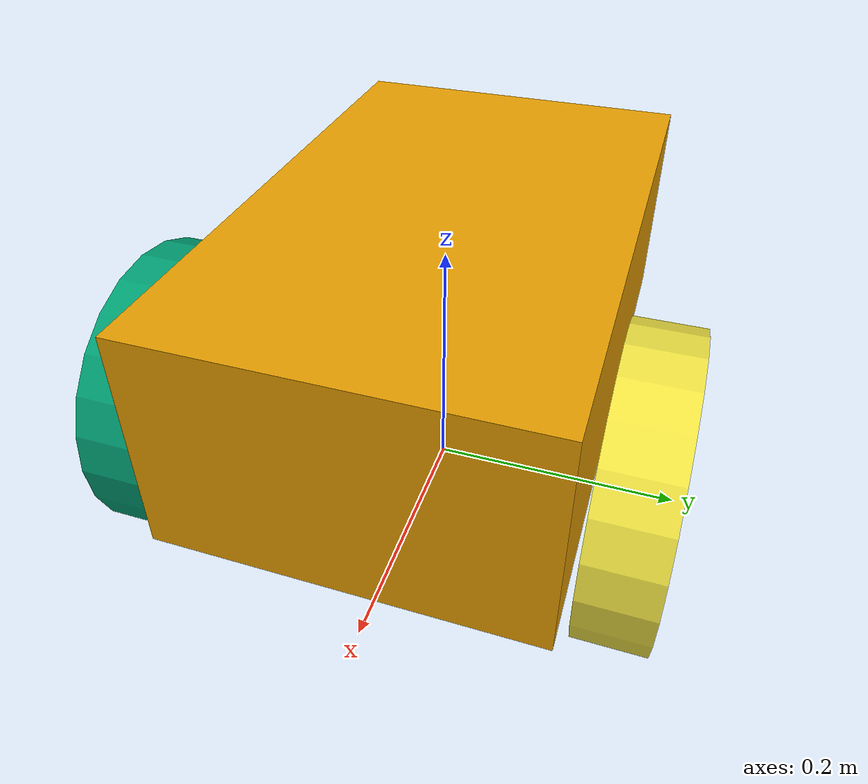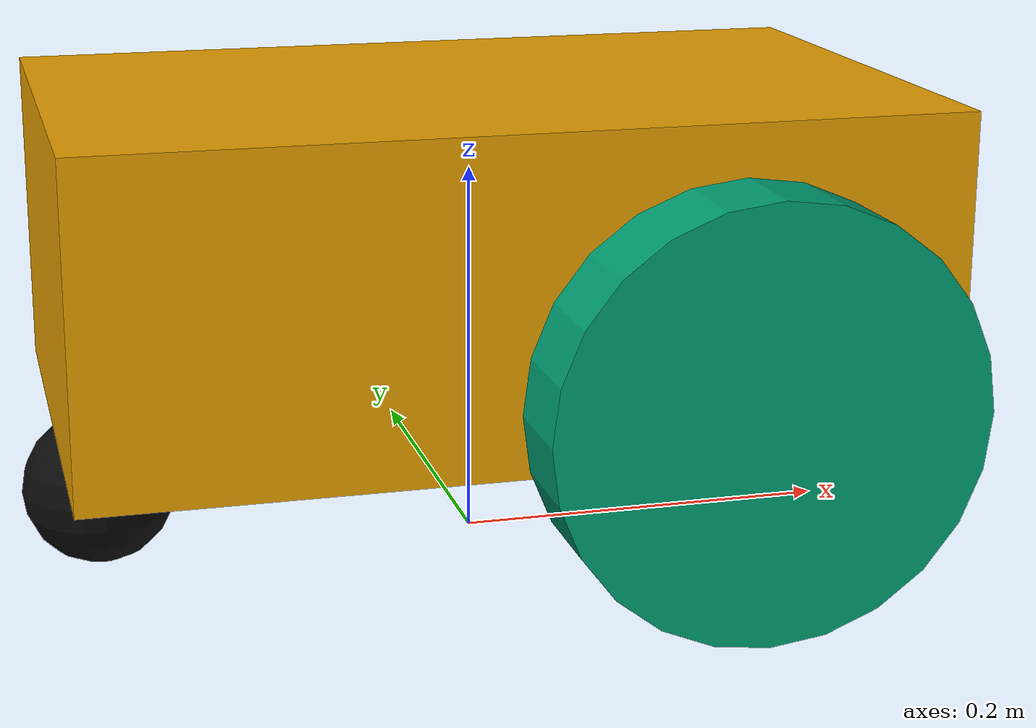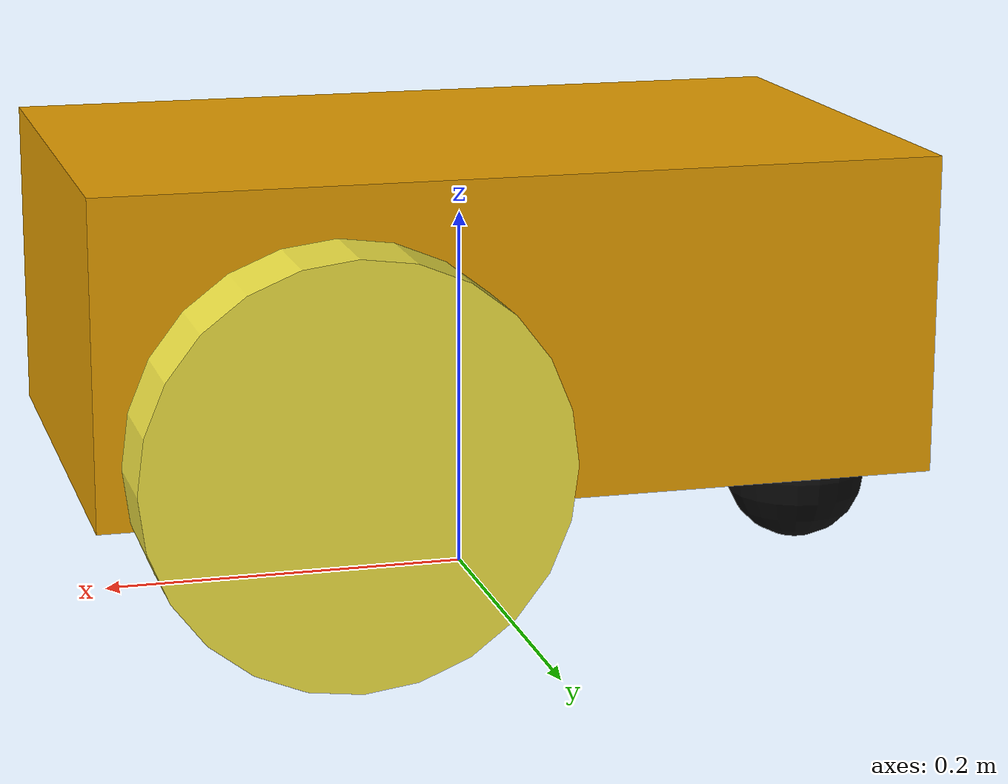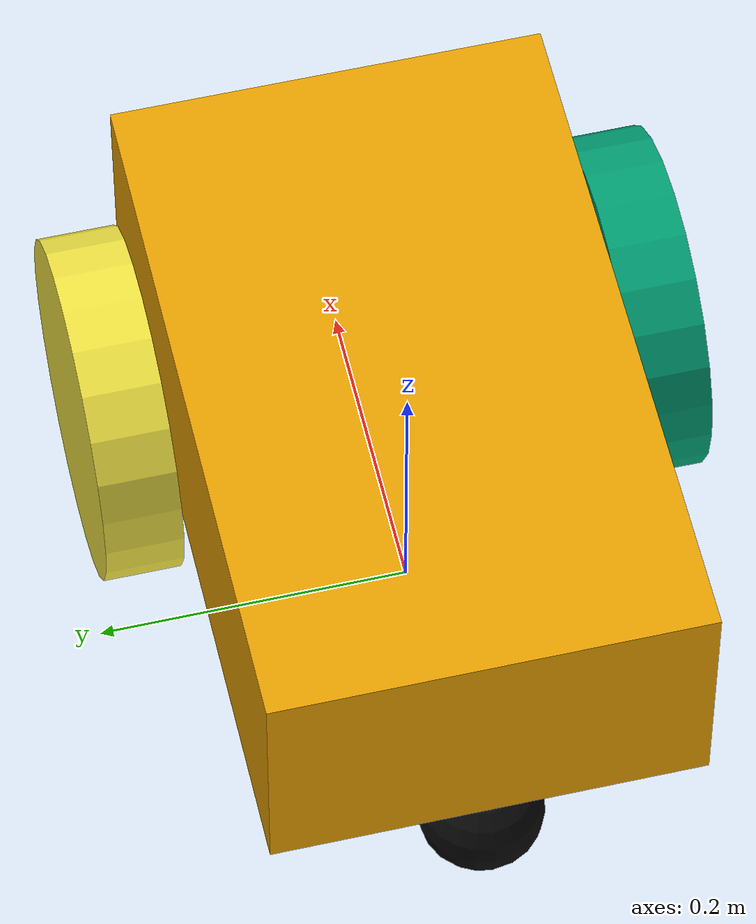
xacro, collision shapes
<?xml version="1.0"?>

<robot name="pioneer3dx"
  xmlns:sensor="http://playerstage.sourceforge.net/gazebo/xmlschema/#sensor"
  xmlns:controller="http://playerstage.sourceforge.net/gazebo/xmlschema/#controller"
  xmlns:interface="http://playerstage.sourceforge.net/gazebo/xmlschema/#interface"
  xmlns:xacro="http://www.ros.org/wiki/xacro">

  <xacro:include filename="$(find pioneer3dx_description)/urdf/pioneer3dx/pioneer3dx_wheel.xacro"/>

  <!-- Chassis -->
  <link name="base_link">
    <inertial>
      <origin xyz="0 0 0.16"/>
      <mass value="10.0"/>
      <inertia ixx="0.07" ixy="0" ixz="0" iyy="08" iyz="0" izz="0.10"/>
    </inertial>
    <collision name="collision">
      <origin xyz="0 0 0.16"/>
      <geometry>
        <box size="0.445 0.277 0.17"/>
      </geometry>
    </collision>
    <visual>
      <origin xyz="0 0 0.20"/>
      <geometry name="pioneer_geom">
        <mesh filename="package://pioneer3dx_description/meshes/pioneer3dx/chassis.dae"/>
      </geometry>
    </visual>
  </link>

  <!-- Castor -->
  <link name="castor">
    <inertial>
      <mass value="0.5"/>
      <origin xyz="-0.2 0 0.04"/>
      <inertia ixx="0.01" ixy="0.0" ixz="0.0" iyy="0.01" iyz="0" izz="0.01"/>
    </inertial>
    <collision>
      <origin xyz="-0.2 0 0.04"/>
      <geometry>
        <sphere radius="0.04"/>
      </geometry>
    </collision>
    <visual>
      <origin xyz="-0.2 0 0.04"/>
      <geometry name="castor_geom">
        <sphere radius="0.04"/>
      </geometry>
      <material name="castor">
        <color rgba="0.038 0.038 0.038 1.0"/>
      </material>
    </visual>
   </link>
  <gazebo reference="castor">
    <material>Gazebo/FlatBlack</material>
    <mu1>0</mu1>
    <mu2>0</mu2>
  </gazebo>
  <joint name="base_castor_joint" type="fixed">
    <origin rpy="0 0 0" xyz="0 0 0"/>
    <parent link="base_link"/>
    <child link="castor"/>
  </joint>

  <!-- Wheels -->
  <xacro:p3dx_wheel suffix="right_wheel" parent="base_link" reflect="1"/>
  <xacro:p3dx_wheel suffix="left_wheel" parent="base_link" reflect="0"/>

  <!-- CONTROLLERS -->
  <gazebo>
  <!-- Robot kinematic properties -->

    <plugin name="differential_drive_controller" filename="libgazebo_ros_diff_drive.so">
      <alwaysOn>true</alwaysOn>
      <updateRate>100</updateRate>
      <rosDebugLevel>Debug</rosDebugLevel>
      <leftJoint>base_link_right_wheel_link_joint</leftJoint>
      <rightJoint>base_link_left_wheel_link_joint</rightJoint>
      <wheelSeparation>0.34</wheelSeparation>
      <wheelDiameter>0.22</wheelDiameter>
      <publishWheelTF>false</publishWheelTF>
      <publishWheelJointState>true</publishWheelJointState>
      <wheelAcceleration>0</wheelAcceleration>
      <wheelTorque>5</wheelTorque>
      <commandTopic>/p3dx/cmd_vel</commandTopic>
      <odometryTopic>/p3dx/odom</odometryTopic>
      <odometryFrame>odom</odometryFrame>
      <publishTf>1</publishTf>
      <robotBaseFrame>base_link</robotBaseFrame>
      <odometrySource>world</odometrySource>
      <legacyMode>true</legacyMode>
    </plugin>
    <plugin name="ground_truth" filename="libgazebo_ros_p3d.so">
      <updateRate>100.0</updateRate>
      <bodyName>base_link</bodyName>
      <topicName>/p3dx/base_pose_ground_truth</topicName>
      <frameName>map</frameName>
    </plugin>
    <plugin name="gazebo_ros_control" filename="libgazebo_ros_control.so">
      <robotNamespace>/p3dx</robotNamespace>
    </plugin>
  </gazebo>
</robot>

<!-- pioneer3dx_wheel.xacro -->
<robot
  xmlns:sensor="http://playerstage.sourceforge.net/gazebo/xmlschema/#sensor"
  xmlns:controller="http://playerstage.sourceforge.net/gazebo/xmlschema/#controller"
  xmlns:interface="http://playerstage.sourceforge.net/gazebo/xmlschema/#interface"
  xmlns:xacro="http://ros.org/wiki/xacro">

  <!-- Properties (Constants) -->
  <property name="M_PI" value="3.14159"/>

  <!-- Right/Left Wheel -->
  <xacro:macro name="p3dx_wheel" params="suffix parent reflect">
    <link name="${suffix}_link">
      <inertial>
        <mass value="1.5"/>
        <origin rpy="${M_PI/2} 0 0"/>
        <inertia ixx="0.0051" ixy="0" ixz="0" iyy="0.0051" iyz="0" izz="0.0090"/>
      </inertial>
      <collision>
        <origin rpy="${M_PI/2} 0 0"/>
        <geometry>
          <cylinder length="0.05" radius="0.11"/>
        </geometry>
      </collision>
      <visual name="${suffix}_link_visual">
        <origin rpy="0 0 ${reflect*M_PI}"/>
        <geometry name="wheel_geom">
          <mesh filename="package://pioneer3dx_description/meshes/pioneer3dx/wheel.dae"/>
        </geometry>
      </visual>
    </link>
    <gazebo reference="${suffix}_link">
      <mu1>0.5</mu1>
      <mu2>50.0</mu2>
      <kp>100000000.0</kp>
      <kd>1.0</kd>
    </gazebo>
    <joint name="${parent}_${suffix}_link_joint" type="continuous">
      <axis xyz="0 1 0"/>
      <anchor xyz="0 0 0"/>
      <limit effort="100" velocity="100"/>
      <joint_properties damping="0.0" friction="0.0"/>
      <origin rpy="0 0 0" xyz="0.1 ${-0.34*reflect+0.17} 0.11"/>
      <parent link="${parent}"/>
      <child link="${suffix}_link"/>
    </joint>
    <transmission name="${parent}_${suffix}_link_trans">
      <type>transmission_interface/SimpleTransmission</type>
      <joint name="${parent}_${suffix}_link_joint">
        <hardwareInterface>EffortJointInterface</hardwareInterface>
      </joint>
      <actuator name="${parent}_${suffix}_link_motor">
        <hardwareInterface>EffortJointInterface</hardwareInterface>
        <mechanicalReduction>1</mechanicalReduction>
      </actuator>
    </transmission>
  </xacro:macro>
</robot>
